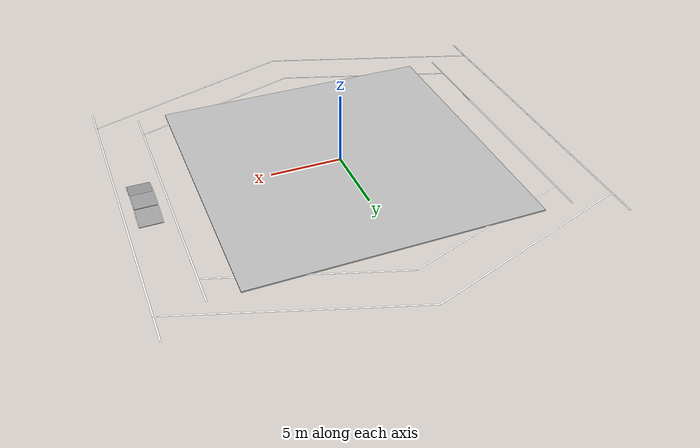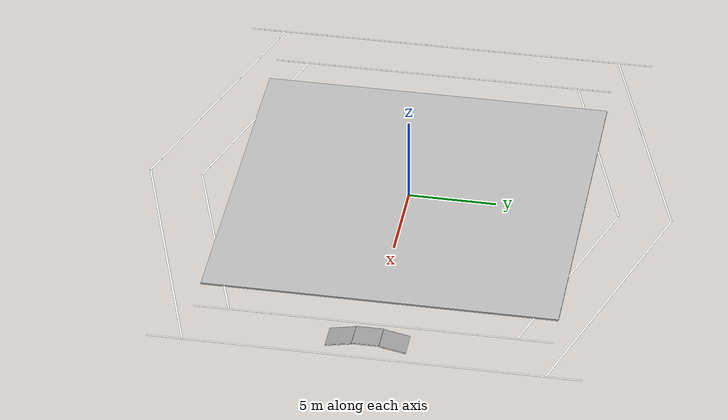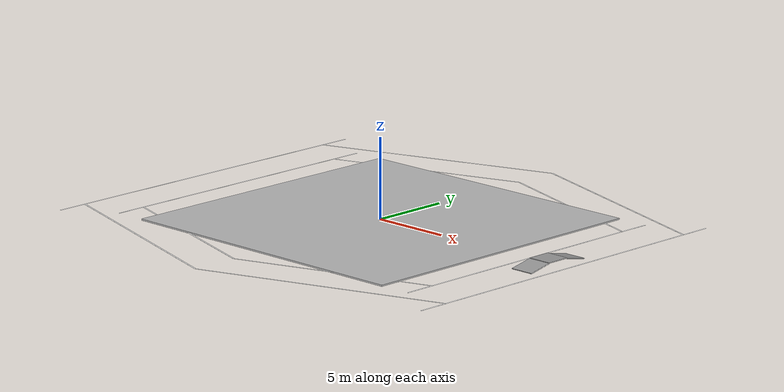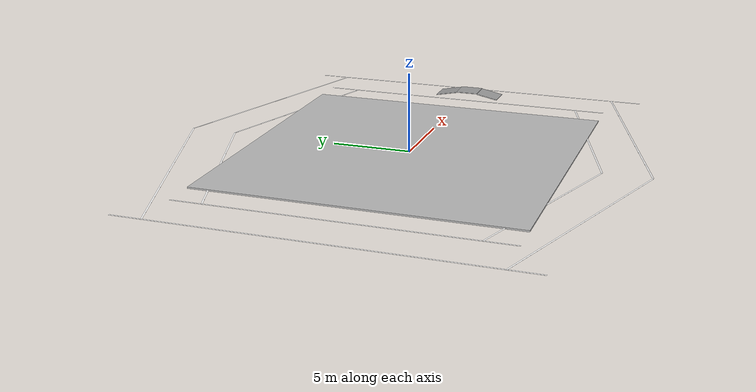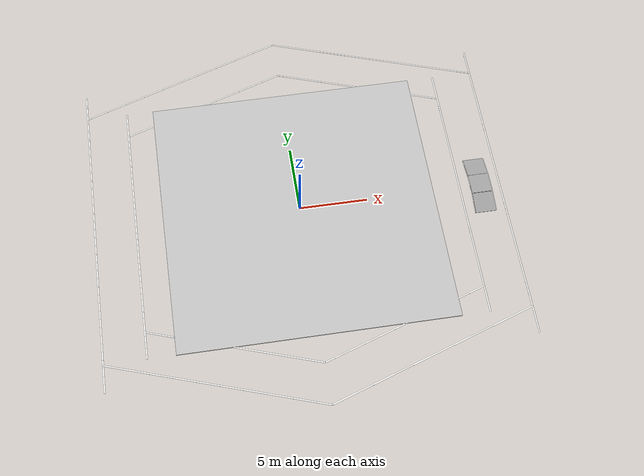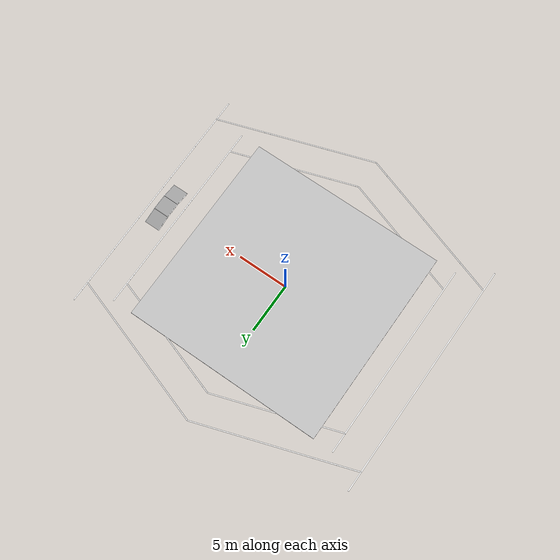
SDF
<sdf version="1.6">
 <world name="new_world">
  <physics type="ode">
   <max_step_size>0.001</max_step_size>
   <real_time_update_rate>1000</real_time_update_rate>
  </physics>
  <light type="directional" name="sun">
   <pose>0 0 10 0 0 0</pose>
   <diffuse>1 1 1 1</diffuse>
   <specular>0.2 0.2 0.2 1</specular>
   <direction>-0.5 0.1 -0.9</direction>
  </light>
  <include><uri>model://floor</uri></include>
  <model name="line_left_outer">
   <static>true</static>
   <pose>-15 0 0.001 0 0 1.5708</pose>
   <link name="link">
    <visual name="visual">
     <geometry><box><size>20 0.1 0.002</size></box></geometry>
     <material><ambient>1 1 1 1</ambient></material>
    </visual>
   </link>
  </model>
  <model name="line_left_inner">
   <static>true</static>
   <pose>-12 0 0.001 0 0 1.5708</pose>
   <link name="link">
    <visual name="visual">
     <geometry><box><size>20 0.1 0.002</size></box></geometry>
     <material><ambient>1 1 1 1</ambient></material>
    </visual>
   </link>
  </model>
  <model name="line_right_inner">
   <static>true</static>
   <pose>12 0 0.001 0 0 1.5708</pose>
   <link name="link">
    <visual name="visual">
     <geometry><box><size>20 0.1 0.002</size></box></geometry>
     <material><ambient>1 1 1 1</ambient></material>
    </visual>
   </link>
  </model>
  <model name="line_right_outer">
   <static>true</static>
   <pose>15 0 0.001 0 0 1.5708</pose>
   <link name="link">
    <visual name="visual">
     <geometry><box><size>20 0.1 0.002</size></box></geometry>
     <material><ambient>1 1 1 1</ambient></material>
    </visual>
   </link>
  </model>
  <model name="line_top_out_1">
   <static>true</static>
   <pose>-7.5 12.5 0.001 0 0 0.32</pose>
   <link name="link">
    <visual name="visual">
     <geometry><box><size>15.8 0.1 0.002</size></box></geometry>
     <material><ambient>1 1 1 1</ambient></material>
    </visual>
   </link>
  </model>
  <model name="line_top_in_1">
   <static>true</static>
   <pose>-6 10 0.001 0 0 0.32</pose>
   <link name="link">
    <visual name="visual">
     <geometry><box><size>12.6 0.1 0.002</size></box></geometry>
     <material><ambient>1 1 1 1</ambient></material>
    </visual>
   </link>
  </model>
  <model name="line_top_out_2">
   <static>true</static>
   <pose>7.5 12.5 0.001 0 0 -0.32</pose>
   <link name="link">
    <visual name="visual">
     <geometry><box><size>15.8 0.1 0.002</size></box></geometry>
     <material><ambient>1 1 1 1</ambient></material>
    </visual>
   </link>
  </model>
  <model name="line_top_in_2">
   <static>true</static>
   <pose>6 10 0.001 0 0 -0.32</pose>
   <link name="link">
    <visual name="visual">
     <geometry><box><size>12.6 0.1 0.002</size></box></geometry>
     <material><ambient>1 1 1 1</ambient></material>
    </visual>
   </link>
  </model>
  <model name="line_bot_out_1">
   <static>true</static>
   <pose>-7.5 -12.5 0.001 0 0 -0.32</pose>
   <link name="link">
    <visual name="visual">
     <geometry><box><size>15.8 0.1 0.002</size></box></geometry>
     <material><ambient>1 1 1 1</ambient></material>
    </visual>
   </link>
  </model>
  <model name="line_bot_in_1">
   <static>true</static>
   <pose>-6 -10 0.001 0 0 -0.32</pose>
   <link name="link">
    <visual name="visual">
     <geometry><box><size>12.6 0.1 0.002</size></box></geometry>
     <material><ambient>1 1 1 1</ambient></material>
    </visual>
   </link>
  </model>
  <model name="line_bot_out_2">
   <static>true</static>
   <pose>7.5 -12.5 0.001 0 0 0.32</pose>
   <link name="link">
    <visual name="visual">
     <geometry><box><size>15.8 0.1 0.002</size></box></geometry>
     <material><ambient>1 1 1 1</ambient></material>
    </visual>
   </link>
  </model>
  <model name="line_bot_in_2">
   <static>true</static>
   <pose>6 -10 0.001 0 0 0.32</pose>
   <link name="link">
    <visual name="visual">
     <geometry><box><size>12.6 0.1 0.002</size></box></geometry>
     <material><ambient>1 1 1 1</ambient></material>
    </visual>
   </link>
  </model>
  <model name="corner_tl_out">
   <static>true</static>
   <pose>-15 11 0.001 0 0 1.57</pose>
   <link name="link">
    <visual name="visual">
     <geometry><box><size>2 0.1 0.002</size></box></geometry>
     <material><ambient>1 1 1 1</ambient></material>
    </visual>
   </link>
  </model>
  <model name="corner_tr_out">
   <static>true</static>
   <pose>15 11 0.001 0 0 1.57</pose>
   <link name="link">
    <visual name="visual">
     <geometry><box><size>2 0.1 0.002</size></box></geometry>
     <material><ambient>1 1 1 1</ambient></material>
    </visual>
   </link>
  </model>
  <model name="corner_bl_out">
   <static>true</static>
   <pose>-15 -11 0.001 0 0 1.57</pose>
   <link name="link">
    <visual name="visual">
     <geometry><box><size>2 0.1 0.002</size></box></geometry>
     <material><ambient>1 1 1 1</ambient></material>
    </visual>
   </link>
  </model>
  <model name="corner_br_out">
   <static>true</static>
   <pose>15 -11 0.001 0 0 1.57</pose>
   <link name="link">
    <visual name="visual">
     <geometry><box><size>2 0.1 0.002</size></box></geometry>
     <material><ambient>1 1 1 1</ambient></material>
    </visual>
   </link>
  </model>
  <include><uri>model://ramp</uri><name>track_ramp</name><pose>13.5 0 0 0 0 1.5708</pose></include>
 </world>
</sdf>

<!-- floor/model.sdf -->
<sdf version="1.6">
  <model name="custom_course">
    <static>true</static>
    <link name="link">
      <collision name="collision">
        <geometry>
          <box>
            <size>20 20 0.1</size> <!-- 20m x 20m wide, 10cm thick -->
          </box>
        </geometry>
      </collision>
      <visual name="visual">
        <geometry>
          <box>
            <size>20 20 0.1</size>
          </box>
        </geometry>
        <material>
          <script>
            <uri>model://floor/materials/scripts</uri>
            <uri>model://floor/materials/textures</uri>
            <name>CustomCourse/Diffuse</name>
          </script>
        </material>
      </visual>
    </link>
  </model>
</sdf>

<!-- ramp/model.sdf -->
<sdf version="1.8">
  <model name="ramp">
    <static>true</static>

    <!-- Up slope -->
    <link name="up_slope">
      <pose>-1.5 0 0.125 0 -0.1963 0</pose>
      <collision name="collision">
        <geometry><box><size>1.5 1.5 0.05</size></box></geometry>
        <surface>
          <friction><ode><mu>1.0</mu><mu2>1.0</mu2></ode></friction>
        </surface>
      </collision>
      <visual name="visual">
        <geometry><box><size>1.5 1.5 0.05</size></box></geometry>
        <material>
          <ambient>0.5 0.5 0.5 1</ambient>
          <diffuse>0.6 0.6 0.6 1</diffuse>
        </material>
      </visual>
    </link>

    <!-- Up slope lane lines -->
    <link name="up_slope_lane_left">
      <pose>-1.5 0.75 0.125 0 -0.1963 0</pose>
      <visual name="visual">
        <geometry><box><size>1.5 0.1 0.01</size></box></geometry>
        <material>
          <ambient>1 1 1 1</ambient>
          <diffuse>1 1 1 1</diffuse>
          <emissive>1 1 1 1</emissive>
        </material>
      </visual>
    </link>
    <link name="up_slope_lane_right">
      <pose>-1.5 -0.75 0.125 0 -0.1963 0</pose>
      <visual name="visual">
        <geometry><box><size>1.5 0.1 0.01</size></box></geometry>
        <material>
          <ambient>1 1 1 1</ambient>
          <diffuse>1 1 1 1</diffuse>
          <emissive>1 1 1 1</emissive>
        </material>
      </visual>
    </link>

    <!-- Flat top -->
    <link name="flat_top">
      <pose>0 0 0.3 0 0 0</pose>
      <collision name="collision">
        <geometry><box><size>1.5 1.5 0.05</size></box></geometry>
        <surface>
          <friction><ode><mu>1.0</mu><mu2>1.0</mu2></ode></friction>
        </surface>
      </collision>
      <visual name="visual">
        <geometry><box><size>1.5 1.5 0.05</size></box></geometry>
        <material>
          <ambient>0.5 0.5 0.5 1</ambient>
          <diffuse>0.6 0.6 0.6 1</diffuse>
        </material>
      </visual>
    </link>

    <!-- Flat top lane lines -->
    <link name="flat_top_lane_left">
      <pose>0 0.75 0.3 0 0 0</pose>
      <visual name="visual">
        <geometry><box><size>1.5 0.1 0.01</size></box></geometry>
        <material>
          <ambient>1 1 1 1</ambient>
          <diffuse>1 1 1 1</diffuse>
          <emissive>1 1 1 1</emissive>
        </material>
      </visual>
    </link>
    <link name="flat_top_lane_right">
      <pose>0 -0.75 0.3 0 0 0</pose>
      <visual name="visual">
        <geometry><box><size>1.5 0.1 0.01</size></box></geometry>
        <material>
          <ambient>1 1 1 1</ambient>
          <diffuse>1 1 1 1</diffuse>
          <emissive>1 1 1 1</emissive>
        </material>
      </visual>
    </link>

    <!-- Down slope -->
    <link name="down_slope">
      <pose>1.5 0 0.125 0 0.1963 0</pose>
      <collision name="collision">
        <geometry><box><size>1.5 1.5 0.05</size></box></geometry>
        <surface>
          <friction><ode><mu>1.0</mu><mu2>1.0</mu2></ode></friction>
        </surface>
      </collision>
      <visual name="visual">
        <geometry><box><size>1.5 1.5 0.05</size></box></geometry>
        <material>
          <ambient>0.5 0.5 0.5 1</ambient>
          <diffuse>0.6 0.6 0.6 1</diffuse>
        </material>
      </visual>
    </link>

    <!-- Down slope lane lines -->
    <link name="down_slope_lane_left">
      <pose>1.5 0.75 0.125 0 0.1963 0</pose>
      <visual name="visual">
        <geometry><box><size>1.5 0.1 0.01</size></box></geometry>
        <material>
          <ambient>1 1 1 1</ambient>
          <diffuse>1 1 1 1</diffuse>
          <emissive>1 1 1 1</emissive>
        </material>
      </visual>
    </link>
    <link name="down_slope_lane_right">
      <pose>1.5 -0.75 0.125 0 0.1963 0</pose>
      <visual name="visual">
        <geometry><box><size>1.5 0.1 0.01</size></box></geometry>
        <material>
          <ambient>1 1 1 1</ambient>
          <diffuse>1 1 1 1</diffuse>
          <emissive>1 1 1 1</emissive>
        </material>
      </visual>
    </link>

  </model>
</sdf>
